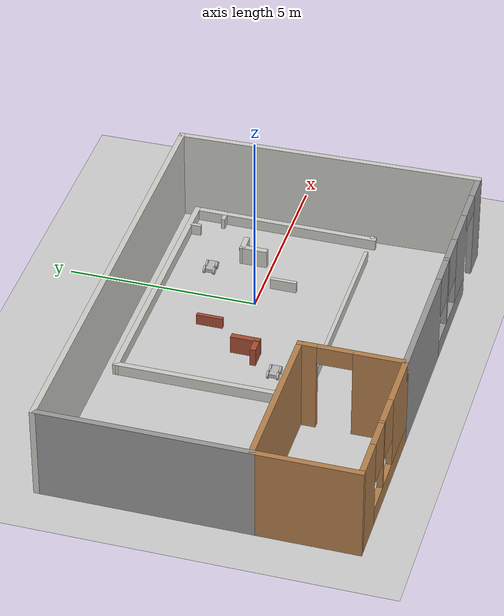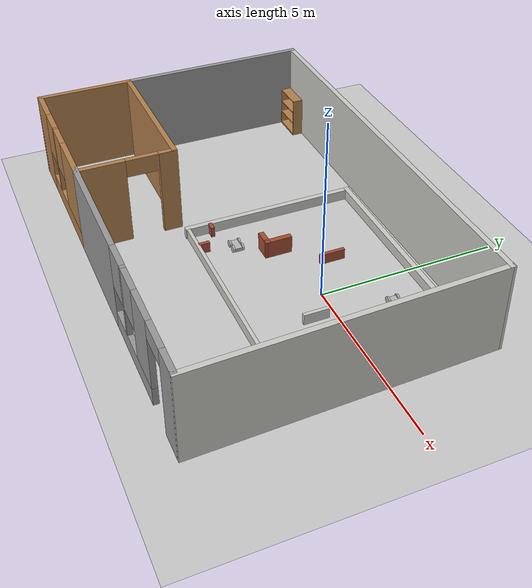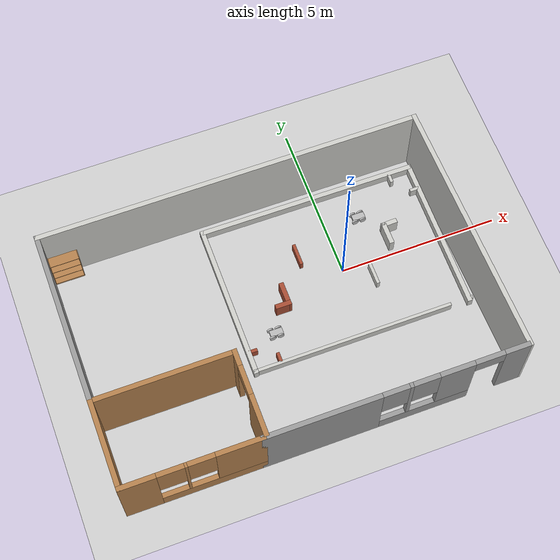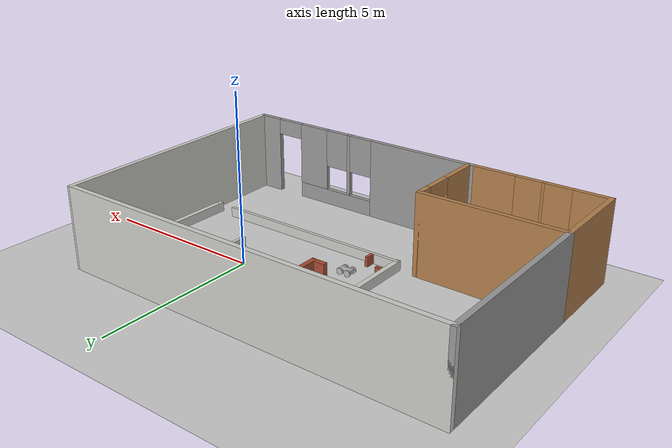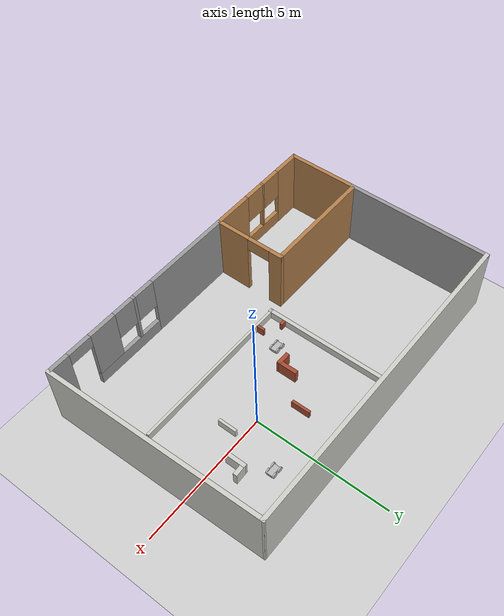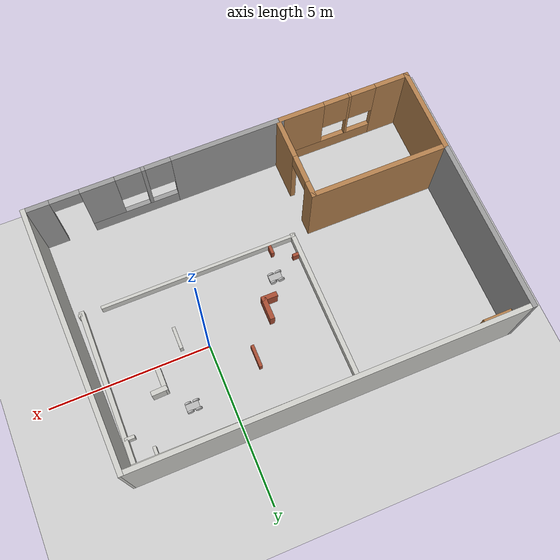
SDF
<sdf version="1.6">
 <world name="default">
  <plugin name="hello" filename="libhello.so"/>
  <light name="sun" type="directional">
   <pose>0 0 10 0 -0 0</pose>
   <diffuse>0.8 0.8 0.8 1</diffuse>
   <specular>0.2 0.2 0.2 1</specular>
   <attenuation>
    <range>1000</range>
    <constant>0.9</constant>
    <linear>0.01</linear>
    <quadratic>0.001</quadratic>
   </attenuation>
   <direction>-0.5 0.1 -0.9</direction>
  </light>
  <model name="ground_plane">
   <static>1</static>
   <link name="link">
    <collision name="collision">
     <geometry><plane><normal>0 0 1</normal><size>100 100</size></plane></geometry>
     <surface><friction><ode><mu>100</mu><mu2>50</mu2></ode></friction></surface>
    </collision>
    <visual name="visual">
     <cast_shadows>0</cast_shadows>
     <geometry><plane><normal>0 0 1</normal><size>100 100</size></plane></geometry>
     <material>
      <script><uri>file://media/materials/scripts/gazebo.material</uri><name>Gazebo/Grey</name></script>
     </material>
    </visual>
   </link>
  </model>
  <gravity>0 0 -9.8</gravity>
  <magnetic_field>6e-06 2.3e-05 -4.2e-05</magnetic_field>
  <atmosphere type="adiabatic"/>
  <physics name="default_physics" default="0" type="ode">
   <max_step_size>0.001</max_step_size>
   <real_time_factor>1</real_time_factor>
   <real_time_update_rate>1000</real_time_update_rate>
  </physics>
  <scene><ambient>0.4 0.4 0.4 1</ambient><background>0.7 0.7 0.7 1</background><shadows>1</shadows></scene>
  <spherical_coordinates>
   <surface_model>EARTH_WGS84</surface_model>
   <latitude_deg>0</latitude_deg>
   <longitude_deg>0</longitude_deg>
   <elevation>0</elevation>
   <heading_deg>0</heading_deg>
  </spherical_coordinates>
  <model name="battleground">
   <pose>-0.211523 0.12377 0 0 -0 0</pose>
   <link name="Wall_0">
    <collision name="Wall_0_Collision">
     <geometry><box><size>7.00909 0.15 0.3</size></box></geometry>
     <pose>0 0 0.15 0 -0 0</pose>
    </collision>
    <visual name="Wall_0_Visual">
     <pose>0 0 0.15 0 -0 0</pose>
     <geometry><box><size>7.00909 0.15 0.3</size></box></geometry>
     <material>
      <script><uri>file://media/materials/scripts/gazebo.material</uri><name>Gazebo/CeilingTiled</name></script>
      <ambient>1 1 1 1</ambient>
     </material>
     <meta><layer>0</layer></meta>
    </visual>
    <pose>-0.007804 2.42504 0 0 0 -0.005249</pose>
   </link>
   <link name="Wall_1">
    <collision name="Wall_1_Collision">
     <geometry><box><size>5.0001 0.15 0.3</size></box></geometry>
     <pose>0 0 0.15 0 -0 0</pose>
    </collision>
    <visual name="Wall_1_Visual">
     <pose>0 0 0.15 0 -0 0</pose>
     <geometry><box><size>5.0001 0.15 0.3</size></box></geometry>
     <material>
      <script><uri>file://media/materials/scripts/gazebo.material</uri><name>Gazebo/CeilingTiled</name></script>
      <ambient>1 1 1 1</ambient>
     </material>
     <meta><layer>0</layer></meta>
    </visual>
    <pose>3.4062 -0.017957 0 0 0 -1.57719</pose>
   </link>
   <link name="Wall_10">
    <pose>0.012696 -2.40696 0 0 -0 0</pose>
    <visual name="Wall_10_Visual_0">
     <pose>-0.354423 0 0.15 0 -0 0</pose>
     <geometry><box><size>6.29115 0.1 0.3</size></box></geometry>
     <material>
      <script><uri>file://media/materials/scripts/gazebo.material</uri><name>Gazebo/CeilingTiled</name></script>
      <ambient>1 1 1 1</ambient>
     </material>
     <meta><layer>0</layer></meta>
    </visual>
    <collision name="Wall_10_Collision_0">
     <geometry><box><size>6.29115 0.1 0.3</size></box></geometry>
     <pose>-0.354423 0 0.15 0 -0 0</pose>
    </collision>
    <visual name="Wall_10_Visual_1">
     <pose>3.44558 0 0.15 0 -0 0</pose>
     <geometry><box><size>0.108846 0.1 0.3</size></box></geometry>
     <material>
      <script><uri>file://media/materials/scripts/gazebo.material</uri><name>Gazebo/CeilingTiled</name></script>
      <ambient>1 1 1 1</ambient>
     </material>
     <meta><layer>0</layer></meta>
    </visual>
    <collision name="Wall_10_Collision_1">
     <geometry><box><size>0.108846 0.1 0.3</size></box></geometry>
     <pose>3.44558 0 0.15 0 -0 0</pose>
    </collision>
   </link>
   <link name="Wall_14">
    <collision name="Wall_14_Collision">
     <geometry><box><size>0.761 0.15 0.5</size></box></geometry>
     <pose>0 0 0.25 0 -0 0</pose>
    </collision>
    <visual name="Wall_14_Visual">
     <pose>0 0 0.25 0 -0 0</pose>
     <geometry><box><size>0.761 0.15 0.5</size></box></geometry>
     <material>
      <script><uri>file://media/materials/scripts/gazebo.material</uri><name>Gazebo/Bricks</name></script>
      <ambient>0.996078 0.47451 0.0196078 1</ambient>
     </material>
     <meta><layer>0</layer></meta>
    </visual>
    <pose>-1.7903 -0.453457 0 0 0 -1.5708</pose>
   </link>
   <link name="Wall_15">
    <collision name="Wall_15_Collision">
     <geometry><box><size>0.5 0.15 0.5</size></box></geometry>
     <pose>0 0 0.25 0 -0 0</pose>
    </collision>
    <visual name="Wall_15_Visual">
     <pose>0 0 0.25 0 -0 0</pose>
     <geometry><box><size>0.5 0.15 0.5</size></box></geometry>
     <material>
      <script><uri>file://media/materials/scripts/gazebo.material</uri><name>Gazebo/Bricks</name></script>
      <ambient>0.996078 0.47451 0.0196078 1</ambient>
     </material>
     <meta><layer>0</layer></meta>
    </visual>
    <pose>-1.9653 -0.759457 0 0 0 -3.13874</pose>
   </link>
   <link name="Wall_17">
    <collision name="Wall_17_Collision">
     <geometry><box><size>0.5 0.15 0.5</size></box></geometry>
     <pose>0 0 0.25 0 -0 0</pose>
    </collision>
    <visual name="Wall_17_Visual">
     <pose>0 0 0.25 0 -0 0</pose>
     <geometry><box><size>0.5 0.15 0.5</size></box></geometry>
     <material>
      <script><uri>file://media/materials/scripts/gazebo.material</uri><name>Gazebo/CeilingTiled</name></script>
      <ambient>0.435294 0.796078 0.67451 1</ambient>
     </material>
     <meta><layer>0</layer></meta>
    </visual>
    <pose>2.0397 0.689543 0 0 0 -3.11017</pose>
   </link>
   <link name="Wall_18">
    <collision name="Wall_18_Collision">
     <geometry><box><size>0.739 0.15 0.5</size></box></geometry>
     <pose>0 0 0.25 0 -0 0</pose>
    </collision>
    <visual name="Wall_18_Visual">
     <pose>0 0 0.25 0 -0 0</pose>
     <geometry><box><size>0.739 0.15 0.5</size></box></geometry>
     <material>
      <script><uri>file://media/materials/scripts/gazebo.material</uri><name>Gazebo/CeilingTiled</name></script>
      <ambient>0.435294 0.796078 0.67451 1</ambient>
     </material>
     <meta><layer>0</layer></meta>
    </visual>
    <pose>1.8647 0.389543 0 0 0 -1.5708</pose>
   </link>
   <link name="Wall_20">
    <collision name="Wall_20_Collision">
     <geometry><box><size>0.25 0.1 0.3</size></box></geometry>
     <pose>0 0 0.15 0 -0 0</pose>
    </collision>
    <visual name="Wall_20_Visual">
     <pose>0 0 0.15 0 -0 0</pose>
     <geometry><box><size>0.25 0.1 0.3</size></box></geometry>
     <material>
      <script><uri>file://media/materials/scripts/gazebo.material</uri><name>Gazebo/Bricks</name></script>
      <ambient>0.996078 0.47451 0.0196078 1</ambient>
     </material>
     <meta><layer>0</layer></meta>
    </visual>
    <pose>-3.2903 -1.77996 0 0 -0 0</pose>
   </link>
   <link name="Wall_22">
    <collision name="Wall_22_Collision">
     <geometry><box><size>0.3 0.1 0.3</size></box></geometry>
     <pose>0 0 0.15 0 -0 0</pose>
    </collision>
    <visual name="Wall_22_Visual">
     <pose>0 0 0.15 0 -0 0</pose>
     <geometry><box><size>0.3 0.1 0.3</size></box></geometry>
     <material>
      <script><uri>file://media/materials/scripts/gazebo.material</uri><name>Gazebo/Bricks</name></script>
      <ambient>0.996078 0.47451 0.0196078 1</ambient>
     </material>
     <meta><layer>0</layer></meta>
    </visual>
    <pose>-2.6333 -2.23096 0 0 -0 1.5708</pose>
   </link>
   <link name="Wall_24">
    <collision name="Wall_24_Collision">
     <geometry><box><size>0.3 0.1 0.3</size></box></geometry>
     <pose>0 0 0.15 0 -0 0</pose>
    </collision>
    <visual name="Wall_24_Visual">
     <pose>0 0 0.15 0 -0 0</pose>
     <geometry><box><size>0.3 0.1 0.3</size></box></geometry>
     <material>
      <script><uri>file://media/materials/scripts/gazebo.material</uri><name>Gazebo/CeilingTiled</name></script>
      <ambient>0.435294 0.796078 0.67451 1</ambient>
     </material>
     <meta><layer>0</layer></meta>
    </visual>
    <pose>2.7217 2.23804 0 0 0 -1.5708</pose>
   </link>
   <link name="Wall_26">
    <collision name="Wall_26_Collision">
     <geometry><box><size>0.3 0.1 0.3</size></box></geometry>
     <pose>0 0 0.15 0 -0 0</pose>
    </collision>
    <visual name="Wall_26_Visual">
     <pose>0 0 0.15 0 -0 0</pose>
     <geometry><box><size>0.3 0.1 0.3</size></box></geometry>
     <material>
      <script><uri>file://media/materials/scripts/gazebo.material</uri><name>Gazebo/CeilingTiled</name></script>
      <ambient>0.435294 0.796078 0.67451 1</ambient>
     </material>
     <meta><layer>0</layer></meta>
    </visual>
    <pose>3.2847 1.60704 0 0 -0 3.14159</pose>
   </link>
   <link name="Wall_28">
    <collision name="Wall_28_Collision">
     <geometry><box><size>0.699918 0.1 0.3</size></box></geometry>
     <pose>0 0 0.15 0 -0 0</pose>
    </collision>
    <visual name="Wall_28_Visual">
     <pose>0 0 0.15 0 -0 0</pose>
     <geometry><box><size>0.699918 0.1 0.3</size></box></geometry>
     <material>
      <script><uri>file://media/materials/scripts/gazebo.material</uri><name>Gazebo/Bricks</name></script>
      <ambient>1 1 1 1</ambient>
     </material>
     <meta><layer>0</layer></meta>
    </visual>
    <pose>-0.946304 0.744043 0 0 0 -1.5708</pose>
   </link>
   <link name="Wall_3">
    <collision name="Wall_3_Collision">
     <geometry><box><size>5 0.15 0.3</size></box></geometry>
     <pose>0 0 0.15 0 -0 0</pose>
    </collision>
    <visual name="Wall_3_Visual">
     <pose>0 0 0.15 0 -0 0</pose>
     <geometry><box><size>5 0.15 0.3</size></box></geometry>
     <material>
      <script><uri>file://media/materials/scripts/gazebo.material</uri><name>Gazebo/CeilingTiled</name></script>
      <ambient>1 1 1 1</ambient>
     </material>
     <meta><layer>0</layer></meta>
    </visual>
    <pose>-3.4373 0.018043 0 0 -0 1.5708</pose>
   </link>
   <link name="Wall_30">
    <collision name="Wall_30_Collision">
     <geometry><box><size>0.700168 0.1 0.3</size></box></geometry>
     <pose>0 0 0.15 0 -0 0</pose>
    </collision>
    <visual name="Wall_30_Visual">
     <pose>0 0 0.15 0 -0 0</pose>
     <geometry><box><size>0.700168 0.1 0.3</size></box></geometry>
     <material>
      <script><uri>file://media/materials/scripts/gazebo.material</uri><name>Gazebo/CeilingTiled</name></script>
      <ambient>0.435294 0.796078 0.67451 1</ambient>
     </material>
     <meta><layer>0</layer></meta>
    </visual>
    <pose>1.0117 -0.661957 0 0 0 -1.5708</pose>
   </link>
   <static>1</static>
  </model>
  <model name="room">
   <pose>-2.43501 -0.99743 0 0 -0 0</pose>
   <link name="Wall_0">
    <collision name="Wall_0_Collision">
     <geometry><box><size>11.97 0.15 2.5</size></box></geometry>
     <pose>0 0 1.25 0 -0 0</pose>
    </collision>
    <visual name="Wall_0_Visual">
     <pose>0 0 1.25 0 -0 0</pose>
     <geometry><box><size>11.97 0.15 2.5</size></box></geometry>
     <material>
      <script><uri>file://media/materials/scripts/gazebo.material</uri><name>Gazebo/CeilingTiled</name></script>
      <ambient>1 1 1 1</ambient>
     </material>
     <meta><layer>0</layer></meta>
    </visual>
    <pose>-0.097397 3.97419 0 0 -0 0</pose>
   </link>
   <link name="Wall_1">
    <collision name="Wall_1_Collision">
     <geometry><box><size>8.1 0.15 2.5</size></box></geometry>
     <pose>0 0 1.25 0 -0 0</pose>
    </collision>
    <visual name="Wall_1_Visual">
     <pose>0 0 1.25 0 -0 0</pose>
     <geometry><box><size>8.1 0.15 2.5</size></box></geometry>
     <material>
      <script><uri>file://media/materials/scripts/gazebo.material</uri><name>Gazebo/CeilingTiled</name></script>
      <ambient>1 1 1 1</ambient>
     </material>
     <meta><layer>0</layer></meta>
    </visual>
    <pose>5.9091 0.000186 0 0 0 -1.54652</pose>
   </link>
   <link name="Wall_21">
    <collision name="Wall_21_Collision">
     <geometry><box><size>5.5 0.15 2.5</size></box></geometry>
     <pose>0 0 1.25 0 -0 0</pose>
    </collision>
    <visual name="Wall_21_Visual">
     <pose>0 0 1.25 0 -0 0</pose>
     <geometry><box><size>5.5 0.15 2.5</size></box></geometry>
     <material>
      <script><uri>file://media/materials/scripts/gazebo.material</uri><name>Gazebo/Grey</name></script>
      <ambient>1 1 1 1</ambient>
     </material>
     <meta><layer>0</layer></meta>
    </visual>
    <pose>-6.0074 1.29919 0 0 0 -1.5708</pose>
   </link>
   <link name="Wall_22">
    <collision name="Wall_22_Collision">
     <geometry><box><size>2.75 0.15 2.5</size></box></geometry>
     <pose>0 0 1.25 0 -0 0</pose>
    </collision>
    <visual name="Wall_22_Visual">
     <pose>0 0 1.25 0 -0 0</pose>
     <geometry><box><size>2.75 0.15 2.5</size></box></geometry>
     <material>
      <script><uri>file://media/materials/scripts/gazebo.material</uri><name>Gazebo/Wood</name></script>
      <ambient>1 1 1 1</ambient>
     </material>
     <meta><layer>0</layer></meta>
    </visual>
    <pose>-6.0074 -2.67581 0 0 0 -1.5708</pose>
   </link>
   <link name="Wall_23">
    <pose>-3.9574 -3.97581 0 0 -0 0</pose>
    <visual name="Wall_23_Visual_0">
     <pose>-1.5675 0 1.25 0 -0 0</pose>
     <geometry><box><size>1.115 0.15 2.5</size></box></geometry>
     <material>
      <script><uri>file://media/materials/scripts/gazebo.material</uri><name>Gazebo/Wood</name></script>
      <ambient>1 1 1 1</ambient>
     </material>
     <meta><layer>0</layer></meta>
    </visual>
    <collision name="Wall_23_Collision_0">
     <geometry><box><size>1.115 0.15 2.5</size></box></geometry>
     <pose>-1.5675 0 1.25 0 -0 0</pose>
    </collision>
    <visual name="Wall_23_Visual_1">
     <pose>0.5575 0 0.25 0 -0 0</pose>
     <geometry><box><size>3.135 0.15 0.5</size></box></geometry>
     <material>
      <script><uri>file://media/materials/scripts/gazebo.material</uri><name>Gazebo/Wood</name></script>
      <ambient>1 1 1 1</ambient>
     </material>
     <meta><layer>0</layer></meta>
    </visual>
    <collision name="Wall_23_Collision_1">
     <geometry><box><size>3.135 0.15 0.5</size></box></geometry>
     <pose>0.5575 0 0.25 0 -0 0</pose>
    </collision>
    <visual name="Wall_23_Visual_2">
     <pose>-0.17 0 1.5 0 -0 0</pose>
     <geometry><box><size>0.079999 0.15 2</size></box></geometry>
     <material>
      <script><uri>file://media/materials/scripts/gazebo.material</uri><name>Gazebo/Wood</name></script>
      <ambient>1 1 1 1</ambient>
     </material>
     <meta><layer>0</layer></meta>
    </visual>
    <collision name="Wall_23_Collision_2">
     <geometry><box><size>0.079999 0.15 2</size></box></geometry>
     <pose>-0.17 0 1.5 0 -0 0</pose>
    </collision>
    <visual name="Wall_23_Visual_3">
     <pose>1.3975 0 1.5 0 -0 0</pose>
     <geometry><box><size>1.455 0.15 2</size></box></geometry>
     <material>
      <script><uri>file://media/materials/scripts/gazebo.material</uri><name>Gazebo/Wood</name></script>
      <ambient>1 1 1 1</ambient>
     </material>
     <meta><layer>0</layer></meta>
    </visual>
    <collision name="Wall_23_Collision_3">
     <geometry><box><size>1.455 0.15 2</size></box></geometry>
     <pose>1.3975 0 1.5 0 -0 0</pose>
    </collision>
    <visual name="Wall_23_Visual_4">
     <pose>-0.61 0 1.9 0 -0 0</pose>
     <geometry><box><size>0.8 0.15 1.2</size></box></geometry>
     <material>
      <script><uri>file://media/materials/scripts/gazebo.material</uri><name>Gazebo/Wood</name></script>
      <ambient>1 1 1 1</ambient>
     </material>
     <meta><layer>0</layer></meta>
    </visual>
    <collision name="Wall_23_Collision_4">
     <geometry><box><size>0.8 0.15 1.2</size></box></geometry>
     <pose>-0.61 0 1.9 0 -0 0</pose>
    </collision>
    <visual name="Wall_23_Visual_5">
     <pose>0.27 0 1.9 0 -0 0</pose>
     <geometry><box><size>0.8 0.15 1.2</size></box></geometry>
     <material>
      <script><uri>file://media/materials/scripts/gazebo.material</uri><name>Gazebo/Wood</name></script>
      <ambient>1 1 1 1</ambient>
     </material>
     <meta><layer>0</layer></meta>
    </visual>
    <collision name="Wall_23_Collision_5">
     <geometry><box><size>0.8 0.15 1.2</size></box></geometry>
     <pose>0.27 0 1.9 0 -0 0</pose>
    </collision>
   </link>
   <link name="Wall_24">
    <pose>2.0176 -3.97581 0 0 -0 0</pose>
    <visual name="Wall_24_Visual_0">
     <pose>-2.2225 0 1.25 0 -0 0</pose>
     <geometry><box><size>3.555 0.15 2.5</size></box></geometry>
     <material>
      <script><uri>file://media/materials/scripts/gazebo.material</uri><name>Gazebo/Grey</name></script>
      <ambient>1 1 1 1</ambient>
     </material>
     <meta><layer>0</layer></meta>
    </visual>
    <collision name="Wall_24_Collision_0">
     <geometry><box><size>3.555 0.15 2.5</size></box></geometry>
     <pose>-2.2225 0 1.25 0 -0 0</pose>
    </collision>
    <visual name="Wall_24_Visual_1">
     <pose>3.6125 0 1.25 0 -0 0</pose>
     <geometry><box><size>0.775 0.15 2.5</size></box></geometry>
     <material>
      <script><uri>file://media/materials/scripts/gazebo.material</uri><name>Gazebo/Grey</name></script>
      <ambient>1 1 1 1</ambient>
     </material>
     <meta><layer>0</layer></meta>
    </visual>
    <collision name="Wall_24_Collision_1">
     <geometry><box><size>0.775 0.15 2.5</size></box></geometry>
     <pose>3.6125 0 1.25 0 -0 0</pose>
    </collision>
    <visual name="Wall_24_Visual_2">
     <pose>0.94 0 0.25 0 -0 0</pose>
     <geometry><box><size>2.77 0.15 0.5</size></box></geometry>
     <material>
      <script><uri>file://media/materials/scripts/gazebo.material</uri><name>Gazebo/Grey</name></script>
      <ambient>1 1 1 1</ambient>
     </material>
     <meta><layer>0</layer></meta>
    </visual>
    <collision name="Wall_24_Collision_2">
     <geometry><box><size>2.77 0.15 0.5</size></box></geometry>
     <pose>0.94 0 0.25 0 -0 0</pose>
    </collision>
    <visual name="Wall_24_Visual_3">
     <pose>0.41 0 1.5 0 -0 0</pose>
     <geometry><box><size>0.11 0.15 2</size></box></geometry>
     <material>
      <script><uri>file://media/materials/scripts/gazebo.material</uri><name>Gazebo/Grey</name></script>
      <ambient>1 1 1 1</ambient>
     </material>
     <meta><layer>0</layer></meta>
    </visual>
    <collision name="Wall_24_Collision_3">
     <geometry><box><size>0.11 0.15 2</size></box></geometry>
     <pose>0.41 0 1.5 0 -0 0</pose>
    </collision>
    <visual name="Wall_24_Visual_4">
     <pose>1.795 0 1.5 0 -0 0</pose>
     <geometry><box><size>1.06 0.15 2</size></box></geometry>
     <material>
      <script><uri>file://media/materials/scripts/gazebo.material</uri><name>Gazebo/Grey</name></script>
      <ambient>1 1 1 1</ambient>
     </material>
     <meta><layer>0</layer></meta>
    </visual>
    <collision name="Wall_24_Collision_4">
     <geometry><box><size>1.06 0.15 2</size></box></geometry>
     <pose>1.795 0 1.5 0 -0 0</pose>
    </collision>
    <visual name="Wall_24_Visual_5">
     <pose>-0.045 0 1.9 0 -0 0</pose>
     <geometry><box><size>0.8 0.15 1.2</size></box></geometry>
     <material>
      <script><uri>file://media/materials/scripts/gazebo.material</uri><name>Gazebo/Grey</name></script>
      <ambient>1 1 1 1</ambient>
     </material>
     <meta><layer>0</layer></meta>
    </visual>
    <collision name="Wall_24_Collision_5">
     <geometry><box><size>0.8 0.15 1.2</size></box></geometry>
     <pose>-0.045 0 1.9 0 -0 0</pose>
    </collision>
    <visual name="Wall_24_Visual_6">
     <pose>0.865 0 1.9 0 -0 0</pose>
     <geometry><box><size>0.8 0.15 1.2</size></box></geometry>
     <material>
      <script><uri>file://media/materials/scripts/gazebo.material</uri><name>Gazebo/Grey</name></script>
      <ambient>1 1 1 1</ambient>
     </material>
     <meta><layer>0</layer></meta>
    </visual>
    <collision name="Wall_24_Collision_6">
     <geometry><box><size>0.8 0.15 1.2</size></box></geometry>
     <pose>0.865 0 1.9 0 -0 0</pose>
    </collision>
    <visual name="Wall_24_Visual_7">
     <pose>2.775 0 2.25 0 -0 0</pose>
     <geometry><box><size>0.9 0.15 0.5</size></box></geometry>
     <material>
      <script><uri>file://media/materials/scripts/gazebo.material</uri><name>Gazebo/Grey</name></script>
      <ambient>1 1 1 1</ambient>
     </material>
     <meta><layer>0</layer></meta>
    </visual>
    <collision name="Wall_24_Collision_7">
     <geometry><box><size>0.9 0.15 0.5</size></box></geometry>
     <pose>2.775 0 2.25 0 -0 0</pose>
    </collision>
   </link>
   <link name="Wall_5">
    <collision name="Wall_5_Collision">
     <geometry><box><size>4.25 0.15 2.5</size></box></geometry>
     <pose>0 0 1.25 0 -0 0</pose>
    </collision>
    <visual name="Wall_5_Visual">
     <pose>0 0 1.25 0 -0 0</pose>
     <geometry><box><size>4.25 0.15 2.5</size></box></geometry>
     <material>
      <script><uri>file://media/materials/scripts/gazebo.material</uri><name>Gazebo/Wood</name></script>
      <ambient>1 1 1 1</ambient>
     </material>
     <meta><layer>0</layer></meta>
    </visual>
    <pose>-3.8574 -1.34581 0 0 -0 0</pose>
   </link>
   <link name="Wall_6">
    <pose>-1.8074 -2.62081 0 0 0 -1.5708</pose>
    <visual name="Wall_6_Visual_0">
     <pose>-1.0925 0 1.25 0 -0 0</pose>
     <geometry><box><size>0.515 0.15 2.5</size></box></geometry>
     <material>
      <script><uri>file://media/materials/scripts/gazebo.material</uri><name>Gazebo/Wood</name></script>
      <ambient>1 1 1 1</ambient>
     </material>
     <meta><layer>0</layer></meta>
    </visual>
    <collision name="Wall_6_Collision_0">
     <geometry><box><size>0.515 0.15 2.5</size></box></geometry>
     <pose>-1.0925 0 1.25 0 -0 0</pose>
    </collision>
    <visual name="Wall_6_Visual_1">
     <pose>0.7075 0 1.25 0 -0 0</pose>
     <geometry><box><size>1.285 0.15 2.5</size></box></geometry>
     <material>
      <script><uri>file://media/materials/scripts/gazebo.material</uri><name>Gazebo/Wood</name></script>
      <ambient>1 1 1 1</ambient>
     </material>
     <meta><layer>0</layer></meta>
    </visual>
    <collision name="Wall_6_Collision_1">
     <geometry><box><size>1.285 0.15 2.5</size></box></geometry>
     <pose>0.7075 0 1.25 0 -0 0</pose>
    </collision>
    <visual name="Wall_6_Visual_2">
     <pose>-0.385 0 2.25 0 -0 0</pose>
     <geometry><box><size>0.9 0.15 0.5</size></box></geometry>
     <material>
      <script><uri>file://media/materials/scripts/gazebo.material</uri><name>Gazebo/Wood</name></script>
      <ambient>1 1 1 1</ambient>
     </material>
     <meta><layer>0</layer></meta>
    </visual>
    <collision name="Wall_6_Collision_2">
     <geometry><box><size>0.9 0.15 0.5</size></box></geometry>
     <pose>-0.385 0 2.25 0 -0 0</pose>
    </collision>
   </link>
   <static>1</static>
  </model>
  <model name="bookshelf">
   <static>1</static>
   <link name="link">
    <inertial><mass>1</mass></inertial>
    <collision name="back">
     <pose>0 0.005 0.6 0 -0 0</pose>
     <geometry><box><size>0.9 0.01 1.2</size></box></geometry>
    </collision>
    <visual name="visual1">
     <pose>0 0.005 0.6 0 -0 0</pose>
     <geometry><box><size>0.9 0.01 1.2</size></box></geometry>
     <material>
      <script><uri>file://media/materials/scripts/gazebo.material</uri><name>Gazebo/Wood</name></script>
     </material>
    </visual>
    <collision name="left_side">
     <pose>0.45 -0.195 0.6 0 -0 0</pose>
     <geometry><box><size>0.02 0.4 1.2</size></box></geometry>
    </collision>
    <visual name="visual2">
     <pose>0.45 -0.195 0.6 0 -0 0</pose>
     <geometry><box><size>0.02 0.4 1.2</size></box></geometry>
     <material>
      <script><uri>file://media/materials/scripts/gazebo.material</uri><name>Gazebo/Wood</name></script>
     </material>
    </visual>
    <collision name="right_side">
     <pose>-0.45 -0.195 0.6 0 -0 0</pose>
     <geometry><box><size>0.02 0.4 1.2</size></box></geometry>
    </collision>
    <visual name="visual3">
     <pose>-0.45 -0.195 0.6 0 -0 0</pose>
     <geometry><box><size>0.02 0.4 1.2</size></box></geometry>
     <material>
      <script><uri>file://media/materials/scripts/gazebo.material</uri><name>Gazebo/Wood</name></script>
     </material>
    </visual>
    <collision name="bottom">
     <pose>0 -0.195 0.03 0 -0 0</pose>
     <geometry><box><size>0.88 0.4 0.06</size></box></geometry>
    </collision>
    <visual name="visual4">
     <pose>0 -0.195 0.03 0 -0 0</pose>
     <geometry><box><size>0.88 0.4 0.06</size></box></geometry>
     <material>
      <script><uri>file://media/materials/scripts/gazebo.material</uri><name>Gazebo/Wood</name></script>
     </material>
    </visual>
    <collision name="top">
     <pose>0 -0.195 1.19 0 -0 0</pose>
     <geometry><box><size>0.88 0.4 0.02</size></box></geometry>
    </collision>
    <visual name="visual5">
     <pose>0 -0.195 1.19 0 -0 0</pose>
     <geometry><box><size>0.88 0.4 0.02</size></box></geometry>
     <material>
      <script><uri>file://media/materials/scripts/gazebo.material</uri><name>Gazebo/Wood</name></script>
     </material>
    </visual>
    <collision name="low_shelf">
     <pose>0 -0.195 0.43 0 -0 0</pose>
     <geometry><box><size>0.88 0.4 0.02</size></box></geometry>
    </collision>
    <visual name="visual6">
     <pose>0 -0.195 0.43 0 -0 0</pose>
     <geometry><box><size>0.88 0.4 0.02</size></box></geometry>
     <material>
      <script><uri>file://media/materials/scripts/gazebo.material</uri><name>Gazebo/Wood</name></script>
     </material>
    </visual>
    <collision name="high_shelf">
     <pose>0 -0.195 0.8 0 -0 0</pose>
     <geometry><box><size>0.88 0.4 0.02</size></box></geometry>
    </collision>
    <visual name="visual7">
     <pose>0 -0.195 0.8 0 -0 0</pose>
     <geometry><box><size>0.88 0.4 0.02</size></box></geometry>
     <material>
      <script><uri>file://media/materials/scripts/gazebo.material</uri><name>Gazebo/Wood</name></script>
     </material>
    </visual>
   </link>
   <pose>-7.91566 2.98462 0 0 -0 0</pose>
  </model>
  <model name="my_robot">
   <static>1</static>
   <link name="chassis">
    <pose>-0 0 0.1 0 -0 0</pose>
    <inertial>
     <inertia><ixx>1</ixx><ixy>0</ixy><ixz>0</ixz><iyy>1</iyy><iyz>0</iyz><izz>1</izz></inertia>
     <mass>1</mass>
    </inertial>
    <visual name="visual">
     <geometry><box><size>0.4 0.2 0.1</size></box></geometry>
     <material><shader type="pixel"/></material>
    </visual>
    <collision name="collision">
     <geometry><box><size>0.4 0.2 0.1</size></box></geometry>
     <surface>
      <friction>
       <ode><mu>1</mu><mu2>1</mu2><fdir1>0 0 0</fdir1><slip1>0</slip1><slip2>0</slip2></ode>
       <torsional>
        <coefficient>1</coefficient>
        <patch_radius>0</patch_radius>
        <surface_radius>0</surface_radius>
        <use_patch_radius>1</use_patch_radius>
        <ode><slip>0</slip></ode>
       </torsional>
      </friction>
      <bounce><restitution_coefficient>0</restitution_coefficient><threshold>1e+06</threshold></bounce>
      <contact>
       <collide_without_contact>0</collide_without_contact>
       <collide_without_contact_bitmask>1</collide_without_contact_bitmask>
       <collide_bitmask>1</collide_bitmask>
       <ode>
        <soft_cfm>0</soft_cfm>
        <soft_erp>0.2</soft_erp>
        <kp>1e+13</kp>
        <kd>1</kd>
        <max_vel>0.01</max_vel>
        <min_depth>0</min_depth>
       </ode>
       <bullet>
        <split_impulse>1</split_impulse>
        <split_impulse_penetration_threshold>-0.01</split_impulse_penetration_threshold>
        <soft_cfm>0</soft_cfm>
        <soft_erp>0.2</soft_erp>
        <kp>1e+13</kp>
        <kd>1</kd>
       </bullet>
      </contact>
     </surface>
    </collision>
   </link>
   <link name="left_wheel">
    <pose>0.1 0.13 0.1 -0.000563 1.5707 1.57014</pose>
    <inertial>
     <inertia><ixx>1</ixx><ixy>0</ixy><ixz>0</ixz><iyy>1</iyy><iyz>0</iyz><izz>1</izz></inertia>
     <mass>1</mass>
    </inertial>
    <visual name="visual">
     <geometry><cylinder><radius>0.1</radius><length>0.05</length></cylinder></geometry>
     <material><shader type="pixel"/></material>
    </visual>
    <collision name="collision">
     <geometry><cylinder><radius>0.1</radius><length>0.05</length></cylinder></geometry>
     <surface>
      <friction>
       <ode><mu>1</mu><mu2>1</mu2><fdir1>0 0 0</fdir1><slip1>0</slip1><slip2>0</slip2></ode>
       <torsional>
        <coefficient>1</coefficient>
        <patch_radius>0</patch_radius>
        <surface_radius>0</surface_radius>
        <use_patch_radius>1</use_patch_radius>
        <ode><slip>0</slip></ode>
       </torsional>
      </friction>
      <bounce><restitution_coefficient>0</restitution_coefficient><threshold>1e+06</threshold></bounce>
      <contact>
       <collide_without_contact>0</collide_without_contact>
       <collide_without_contact_bitmask>1</collide_without_contact_bitmask>
       <collide_bitmask>1</collide_bitmask>
       <ode>
        <soft_cfm>0</soft_cfm>
        <soft_erp>0.2</soft_erp>
        <kp>1e+13</kp>
        <kd>1</kd>
        <max_vel>0.01</max_vel>
        <min_depth>0</min_depth>
       </ode>
       <bullet>
        <split_impulse>1</split_impulse>
        <split_impulse_penetration_threshold>-0.01</split_impulse_penetration_threshold>
        <soft_cfm>0</soft_cfm>
        <soft_erp>0.2</soft_erp>
        <kp>1e+13</kp>
        <kd>1</kd>
       </bullet>
      </contact>
     </surface>
    </collision>
   </link>
   <link name="right_wheel">
    <pose>0.1 -0.13 0.1 -0.001801 1.5707 1.5689</pose>
    <inertial>
     <inertia><ixx>1</ixx><ixy>0</ixy><ixz>0</ixz><iyy>1</iyy><iyz>0</iyz><izz>1</izz></inertia>
     <mass>1</mass>
    </inertial>
    <visual name="visual">
     <geometry><cylinder><radius>0.1</radius><length>0.05</length></cylinder></geometry>
     <material><shader type="pixel"><normal_map>__default__</normal_map></shader></material>
    </visual>
    <collision name="collision">
     <geometry><cylinder><radius>0.1</radius><length>0.05</length></cylinder></geometry>
     <surface>
      <friction>
       <ode><mu>1</mu><mu2>1</mu2><fdir1>0 0 0</fdir1><slip1>0</slip1><slip2>0</slip2></ode>
       <torsional>
        <coefficient>1</coefficient>
        <patch_radius>0</patch_radius>
        <surface_radius>0</surface_radius>
        <use_patch_radius>1</use_patch_radius>
        <ode><slip>0</slip></ode>
       </torsional>
      </friction>
      <bounce><restitution_coefficient>0</restitution_coefficient><threshold>1e+06</threshold></bounce>
      <contact>
       <collide_without_contact>0</collide_without_contact>
       <collide_without_contact_bitmask>1</collide_without_contact_bitmask>
       <collide_bitmask>1</collide_bitmask>
       <ode>
        <soft_cfm>0</soft_cfm>
        <soft_erp>0.2</soft_erp>
        <kp>1e+13</kp>
        <kd>1</kd>
        <max_vel>0.01</max_vel>
        <min_depth>0</min_depth>
       </ode>
       <bullet>
        <split_impulse>1</split_impulse>
        <split_impulse_penetration_threshold>-0.01</split_impulse_penetration_threshold>
        <soft_cfm>0</soft_cfm>
        <soft_erp>0.2</soft_erp>
        <kp>1e+13</kp>
        <kd>1</kd>
       </bullet>
      </contact>
     </surface>
    </collision>
   </link>
   <joint name="left_wheel_hinge" type="revolute">
    <parent>chassis</parent>
    <child>left_wheel</child>
    <pose>0 0 -0.03 0 -0 0</pose>
    <axis>
     <xyz>0 1 0</xyz>
     <use_parent_model_frame>1</use_parent_model_frame>
     <limit><lower>-1e+16</lower><upper>1e+16</upper><effort>-1</effort><velocity>-1</velocity></limit>
     <dynamics>
      <spring_reference>0</spring_reference>
      <spring_stiffness>0</spring_stiffness>
      <damping>0</damping>
      <friction>0</friction>
     </dynamics>
    </axis>
    <physics>
     <ode><limit><cfm>0</cfm><erp>0.2</erp></limit><suspension><cfm>0</cfm><erp>0.2</erp></suspension></ode>
    </physics>
   </joint>
   <joint name="right_wheel_hinge" type="revolute">
    <parent>chassis</parent>
    <child>right_wheel</child>
    <pose>0 0 0.03 0 -0 0</pose>
    <axis>
     <xyz>0 1 0</xyz>
     <use_parent_model_frame>1</use_parent_model_frame>
     <limit><lower>-1e+16</lower><upper>1e+16</upper><effort>-1</effort><velocity>-1</velocity></limit>
     <dynamics>
      <spring_reference>0</spring_reference>
      <spring_stiffness>0</spring_stiffness>
      <damping>0</damping>
      <friction>0</friction>
     </dynamics>
    </axis>
    <physics>
     <ode><limit><cfm>0</cfm><erp>0.2</erp></limit><suspension><cfm>0</cfm><erp>0.2</erp></suspension></ode>
    </physics>
   </joint>
   <link name="back_left_wheel">
    <pose>-0.15 -0.13 0.1 -0.001801 1.5707 1.5689</pose>
    <inertial>
     <inertia><ixx>1</ixx><ixy>0</ixy><ixz>0</ixz><iyy>1</iyy><iyz>0</iyz><izz>1</izz></inertia>
     <mass>1</mass>
    </inertial>
    <visual name="visual">
     <geometry><cylinder><radius>0.1</radius><length>0.05</length></cylinder></geometry>
     <material><shader type="pixel"/></material>
    </visual>
    <collision name="collision">
     <geometry><cylinder><radius>0.1</radius><length>0.05</length></cylinder></geometry>
     <surface>
      <friction>
       <ode><mu>1</mu><mu2>1</mu2><fdir1>0 0 0</fdir1><slip1>0</slip1><slip2>0</slip2></ode>
       <torsional>
        <coefficient>1</coefficient>
        <patch_radius>0</patch_radius>
        <surface_radius>0</surface_radius>
        <use_patch_radius>1</use_patch_radius>
        <ode><slip>0</slip></ode>
       </torsional>
      </friction>
      <bounce><restitution_coefficient>0</restitution_coefficient><threshold>1e+06</threshold></bounce>
      <contact>
       <collide_without_contact>0</collide_without_contact>
       <collide_without_contact_bitmask>1</collide_without_contact_bitmask>
       <collide_bitmask>1</collide_bitmask>
       <ode>
        <soft_cfm>0</soft_cfm>
        <soft_erp>0.2</soft_erp>
        <kp>1e+13</kp>
        <kd>1</kd>
        <max_vel>0.01</max_vel>
        <min_depth>0</min_depth>
       </ode>
       <bullet>
        <split_impulse>1</split_impulse>
        <split_impulse_penetration_threshold>-0.01</split_impulse_penetration_threshold>
        <soft_cfm>0</soft_cfm>
        <soft_erp>0.2</soft_erp>
        <kp>1e+13</kp>
        <kd>1</kd>
       </bullet>
      </contact>
     </surface>
    </collision>
   </link>
   <link name="back_right_wheel">
    <pose>-0.15 0.13 0.1 -0.001801 1.5707 1.5689</pose>
    <inertial>
     <inertia><ixx>1</ixx><ixy>0</ixy><ixz>0</ixz><iyy>1</iyy><iyz>0</iyz><izz>1</izz></inertia>
     <mass>1</mass>
    </inertial>
    <visual name="visual">
     <geometry><cylinder><radius>0.1</radius><length>0.05</length></cylinder></geometry>
     <material><shader type="pixel"><normal_map>__default__</normal_map></shader></material>
    </visual>
    <collision name="collision">
     <geometry><cylinder><radius>0.1</radius><length>0.05</length></cylinder></geometry>
     <surface>
      <friction>
       <ode><mu>1</mu><mu2>1</mu2><fdir1>0 0 0</fdir1><slip1>0</slip1><slip2>0</slip2></ode>
       <torsional>
        <coefficient>1</coefficient>
        <patch_radius>0</patch_radius>
        <surface_radius>0</surface_radius>
        <use_patch_radius>1</use_patch_radius>
        <ode><slip>0</slip></ode>
       </torsional>
      </friction>
      <bounce><restitution_coefficient>0</restitution_coefficient><threshold>1e+06</threshold></bounce>
      <contact>
       <collide_without_contact>0</collide_without_contact>
       <collide_without_contact_bitmask>1</collide_without_contact_bitmask>
       <collide_bitmask>1</collide_bitmask>
       <ode>
        <soft_cfm>0</soft_cfm>
        <soft_erp>0.2</soft_erp>
        <kp>1e+13</kp>
        <kd>1</kd>
        <max_vel>0.01</max_vel>
        <min_depth>0</min_depth>
       </ode>
       <bullet>
        <split_impulse>1</split_impulse>
        <split_impulse_penetration_threshold>-0.01</split_impulse_penetration_threshold>
        <soft_cfm>0</soft_cfm>
        <soft_erp>0.2</soft_erp>
        <kp>1e+13</kp>
        <kd>1</kd>
       </bullet>
      </contact>
     </surface>
    </collision>
   </link>
   <joint name="back_left_wheel_hinge" type="revolute">
    <parent>chassis</parent>
    <child>left_wheel</child>
    <pose>-0.15 0 -0.03 0 -0 0</pose>
    <axis>
     <xyz>0 1 0</xyz>
     <use_parent_model_frame>1</use_parent_model_frame>
     <limit><lower>-1e+16</lower><upper>1e+16</upper><effort>-1</effort><velocity>-1</velocity></limit>
     <dynamics>
      <spring_reference>0</spring_reference>
      <spring_stiffness>0</spring_stiffness>
      <damping>0</damping>
      <friction>0</friction>
     </dynamics>
    </axis>
    <physics>
     <ode><limit><cfm>0</cfm><erp>0.2</erp></limit><suspension><cfm>0</cfm><erp>0.2</erp></suspension></ode>
    </physics>
   </joint>
   <joint name="back_right_wheel_hinge" type="revolute">
    <parent>chassis</parent>
    <child>right_wheel</child>
    <pose>-0.15 0 0.03 0 -0 0</pose>
    <axis>
     <xyz>0 1 0</xyz>
     <use_parent_model_frame>1</use_parent_model_frame>
     <limit><lower>-1e+16</lower><upper>1e+16</upper><effort>-1</effort><velocity>-1</velocity></limit>
     <dynamics>
      <spring_reference>0</spring_reference>
      <spring_stiffness>0</spring_stiffness>
      <damping>0</damping>
      <friction>0</friction>
     </dynamics>
    </axis>
    <physics>
     <ode><limit><cfm>0</cfm><erp>0.2</erp></limit><suspension><cfm>0</cfm><erp>0.2</erp></suspension></ode>
    </physics>
   </joint>
   <static>0</static>
   <pose>-2.63481 -1.26882 0 0 -0 0</pose>
  </model>
  <model name="my_robot_0">
   <static>1</static>
   <link name="chassis">
    <pose>-0 0 0.1 0 -0 0</pose>
    <inertial>
     <inertia><ixx>1</ixx><ixy>0</ixy><ixz>0</ixz><iyy>1</iyy><iyz>0</iyz><izz>1</izz></inertia>
     <mass>1</mass>
    </inertial>
    <visual name="visual">
     <geometry><box><size>0.4 0.2 0.1</size></box></geometry>
     <material><shader type="pixel"/></material>
    </visual>
    <collision name="collision">
     <geometry><box><size>0.4 0.2 0.1</size></box></geometry>
     <surface>
      <friction>
       <ode><mu>1</mu><mu2>1</mu2><fdir1>0 0 0</fdir1><slip1>0</slip1><slip2>0</slip2></ode>
       <torsional>
        <coefficient>1</coefficient>
        <patch_radius>0</patch_radius>
        <surface_radius>0</surface_radius>
        <use_patch_radius>1</use_patch_radius>
        <ode><slip>0</slip></ode>
       </torsional>
      </friction>
      <bounce><restitution_coefficient>0</restitution_coefficient><threshold>1e+06</threshold></bounce>
      <contact>
       <collide_without_contact>0</collide_without_contact>
       <collide_without_contact_bitmask>1</collide_without_contact_bitmask>
       <collide_bitmask>1</collide_bitmask>
       <ode>
        <soft_cfm>0</soft_cfm>
        <soft_erp>0.2</soft_erp>
        <kp>1e+13</kp>
        <kd>1</kd>
        <max_vel>0.01</max_vel>
        <min_depth>0</min_depth>
       </ode>
       <bullet>
        <split_impulse>1</split_impulse>
        <split_impulse_penetration_threshold>-0.01</split_impulse_penetration_threshold>
        <soft_cfm>0</soft_cfm>
        <soft_erp>0.2</soft_erp>
        <kp>1e+13</kp>
        <kd>1</kd>
       </bullet>
      </contact>
     </surface>
    </collision>
   </link>
   <link name="left_wheel">
    <pose>0.1 0.13 0.1 -0.000563 1.5707 1.57014</pose>
    <inertial>
     <inertia><ixx>1</ixx><ixy>0</ixy><ixz>0</ixz><iyy>1</iyy><iyz>0</iyz><izz>1</izz></inertia>
     <mass>1</mass>
    </inertial>
    <visual name="visual">
     <geometry><cylinder><radius>0.1</radius><length>0.05</length></cylinder></geometry>
     <material><shader type="pixel"/></material>
    </visual>
    <collision name="collision">
     <geometry><cylinder><radius>0.1</radius><length>0.05</length></cylinder></geometry>
     <surface>
      <friction>
       <ode><mu>1</mu><mu2>1</mu2><fdir1>0 0 0</fdir1><slip1>0</slip1><slip2>0</slip2></ode>
       <torsional>
        <coefficient>1</coefficient>
        <patch_radius>0</patch_radius>
        <surface_radius>0</surface_radius>
        <use_patch_radius>1</use_patch_radius>
        <ode><slip>0</slip></ode>
       </torsional>
      </friction>
      <bounce><restitution_coefficient>0</restitution_coefficient><threshold>1e+06</threshold></bounce>
      <contact>
       <collide_without_contact>0</collide_without_contact>
       <collide_without_contact_bitmask>1</collide_without_contact_bitmask>
       <collide_bitmask>1</collide_bitmask>
       <ode>
        <soft_cfm>0</soft_cfm>
        <soft_erp>0.2</soft_erp>
        <kp>1e+13</kp>
        <kd>1</kd>
        <max_vel>0.01</max_vel>
        <min_depth>0</min_depth>
       </ode>
       <bullet>
        <split_impulse>1</split_impulse>
        <split_impulse_penetration_threshold>-0.01</split_impulse_penetration_threshold>
        <soft_cfm>0</soft_cfm>
        <soft_erp>0.2</soft_erp>
        <kp>1e+13</kp>
        <kd>1</kd>
       </bullet>
      </contact>
     </surface>
    </collision>
   </link>
   <link name="right_wheel">
    <pose>0.1 -0.13 0.1 -0.001801 1.5707 1.5689</pose>
    <inertial>
     <inertia><ixx>1</ixx><ixy>0</ixy><ixz>0</ixz><iyy>1</iyy><iyz>0</iyz><izz>1</izz></inertia>
     <mass>1</mass>
    </inertial>
    <visual name="visual">
     <geometry><cylinder><radius>0.1</radius><length>0.05</length></cylinder></geometry>
     <material><shader type="pixel"><normal_map>__default__</normal_map></shader></material>
    </visual>
    <collision name="collision">
     <geometry><cylinder><radius>0.1</radius><length>0.05</length></cylinder></geometry>
     <surface>
      <friction>
       <ode><mu>1</mu><mu2>1</mu2><fdir1>0 0 0</fdir1><slip1>0</slip1><slip2>0</slip2></ode>
       <torsional>
        <coefficient>1</coefficient>
        <patch_radius>0</patch_radius>
        <surface_radius>0</surface_radius>
        <use_patch_radius>1</use_patch_radius>
        <ode><slip>0</slip></ode>
       </torsional>
      </friction>
      <bounce><restitution_coefficient>0</restitution_coefficient><threshold>1e+06</threshold></bounce>
      <contact>
       <collide_without_contact>0</collide_without_contact>
       <collide_without_contact_bitmask>1</collide_without_contact_bitmask>
       <collide_bitmask>1</collide_bitmask>
       <ode>
        <soft_cfm>0</soft_cfm>
        <soft_erp>0.2</soft_erp>
        <kp>1e+13</kp>
        <kd>1</kd>
        <max_vel>0.01</max_vel>
        <min_depth>0</min_depth>
       </ode>
       <bullet>
        <split_impulse>1</split_impulse>
        <split_impulse_penetration_threshold>-0.01</split_impulse_penetration_threshold>
        <soft_cfm>0</soft_cfm>
        <soft_erp>0.2</soft_erp>
        <kp>1e+13</kp>
        <kd>1</kd>
       </bullet>
      </contact>
     </surface>
    </collision>
   </link>
   <joint name="left_wheel_hinge" type="revolute">
    <parent>chassis</parent>
    <child>left_wheel</child>
    <pose>0 0 -0.03 0 -0 0</pose>
    <axis>
     <xyz>0 1 0</xyz>
     <use_parent_model_frame>1</use_parent_model_frame>
     <limit><lower>-1e+16</lower><upper>1e+16</upper><effort>-1</effort><velocity>-1</velocity></limit>
     <dynamics>
      <spring_reference>0</spring_reference>
      <spring_stiffness>0</spring_stiffness>
      <damping>0</damping>
      <friction>0</friction>
     </dynamics>
    </axis>
    <physics>
     <ode><limit><cfm>0</cfm><erp>0.2</erp></limit><suspension><cfm>0</cfm><erp>0.2</erp></suspension></ode>
    </physics>
   </joint>
   <joint name="right_wheel_hinge" type="revolute">
    <parent>chassis</parent>
    <child>right_wheel</child>
    <pose>0 0 0.03 0 -0 0</pose>
    <axis>
     <xyz>0 1 0</xyz>
     <use_parent_model_frame>1</use_parent_model_frame>
     <limit><lower>-1e+16</lower><upper>1e+16</upper><effort>-1</effort><velocity>-1</velocity></limit>
     <dynamics>
      <spring_reference>0</spring_reference>
      <spring_stiffness>0</spring_stiffness>
      <damping>0</damping>
      <friction>0</friction>
     </dynamics>
    </axis>
    <physics>
     <ode><limit><cfm>0</cfm><erp>0.2</erp></limit><suspension><cfm>0</cfm><erp>0.2</erp></suspension></ode>
    </physics>
   </joint>
   <link name="back_left_wheel">
    <pose>-0.15 -0.13 0.1 -0.001801 1.5707 1.5689</pose>
    <inertial>
     <inertia><ixx>1</ixx><ixy>0</ixy><ixz>0</ixz><iyy>1</iyy><iyz>0</iyz><izz>1</izz></inertia>
     <mass>1</mass>
    </inertial>
    <visual name="visual">
     <geometry><cylinder><radius>0.1</radius><length>0.05</length></cylinder></geometry>
     <material><shader type="pixel"/></material>
    </visual>
    <collision name="collision">
     <geometry><cylinder><radius>0.1</radius><length>0.05</length></cylinder></geometry>
     <surface>
      <friction>
       <ode><mu>1</mu><mu2>1</mu2><fdir1>0 0 0</fdir1><slip1>0</slip1><slip2>0</slip2></ode>
       <torsional>
        <coefficient>1</coefficient>
        <patch_radius>0</patch_radius>
        <surface_radius>0</surface_radius>
        <use_patch_radius>1</use_patch_radius>
        <ode><slip>0</slip></ode>
       </torsional>
      </friction>
      <bounce><restitution_coefficient>0</restitution_coefficient><threshold>1e+06</threshold></bounce>
      <contact>
       <collide_without_contact>0</collide_without_contact>
       <collide_without_contact_bitmask>1</collide_without_contact_bitmask>
       <collide_bitmask>1</collide_bitmask>
       <ode>
        <soft_cfm>0</soft_cfm>
        <soft_erp>0.2</soft_erp>
        <kp>1e+13</kp>
        <kd>1</kd>
        <max_vel>0.01</max_vel>
        <min_depth>0</min_depth>
       </ode>
       <bullet>
        <split_impulse>1</split_impulse>
        <split_impulse_penetration_threshold>-0.01</split_impulse_penetration_threshold>
        <soft_cfm>0</soft_cfm>
        <soft_erp>0.2</soft_erp>
        <kp>1e+13</kp>
        <kd>1</kd>
       </bullet>
      </contact>
     </surface>
    </collision>
   </link>
   <link name="back_right_wheel">
    <pose>-0.15 0.13 0.1 -0.001801 1.5707 1.5689</pose>
    <inertial>
     <inertia><ixx>1</ixx><ixy>0</ixy><ixz>0</ixz><iyy>1</iyy><iyz>0</iyz><izz>1</izz></inertia>
     <mass>1</mass>
    </inertial>
    <visual name="visual">
     <geometry><cylinder><radius>0.1</radius><length>0.05</length></cylinder></geometry>
     <material><shader type="pixel"><normal_map>__default__</normal_map></shader></material>
    </visual>
    <collision name="collision">
     <geometry><cylinder><radius>0.1</radius><length>0.05</length></cylinder></geometry>
     <surface>
      <friction>
       <ode><mu>1</mu><mu2>1</mu2><fdir1>0 0 0</fdir1><slip1>0</slip1><slip2>0</slip2></ode>
       <torsional>
        <coefficient>1</coefficient>
        <patch_radius>0</patch_radius>
        <surface_radius>0</surface_radius>
        <use_patch_radius>1</use_patch_radius>
        <ode><slip>0</slip></ode>
       </torsional>
      </friction>
      <bounce><restitution_coefficient>0</restitution_coefficient><threshold>1e+06</threshold></bounce>
      <contact>
       <collide_without_contact>0</collide_without_contact>
       <collide_without_contact_bitmask>1</collide_without_contact_bitmask>
       <collide_bitmask>1</collide_bitmask>
       <ode>
        <soft_cfm>0</soft_cfm>
        <soft_erp>0.2</soft_erp>
        <kp>1e+13</kp>
        <kd>1</kd>
        <max_vel>0.01</max_vel>
        <min_depth>0</min_depth>
       </ode>
       <bullet>
        <split_impulse>1</split_impulse>
        <split_impulse_penetration_threshold>-0.01</split_impulse_penetration_threshold>
        <soft_cfm>0</soft_cfm>
        <soft_erp>0.2</soft_erp>
        <kp>1e+13</kp>
        <kd>1</kd>
       </bullet>
      </contact>
     </surface>
    </collision>
   </link>
   <joint name="back_left_wheel_hinge" type="revolute">
    <parent>chassis</parent>
    <child>left_wheel</child>
    <pose>-0.15 0 -0.03 0 -0 0</pose>
    <axis>
     <xyz>0 1 0</xyz>
     <use_parent_model_frame>1</use_parent_model_frame>
     <limit><lower>-1e+16</lower><upper>1e+16</upper><effort>-1</effort><velocity>-1</velocity></limit>
     <dynamics>
      <spring_reference>0</spring_reference>
      <spring_stiffness>0</spring_stiffness>
      <damping>0</damping>
      <friction>0</friction>
     </dynamics>
    </axis>
    <physics>
     <ode><limit><cfm>0</cfm><erp>0.2</erp></limit><suspension><cfm>0</cfm><erp>0.2</erp></suspension></ode>
    </physics>
   </joint>
   <joint name="back_right_wheel_hinge" type="revolute">
    <parent>chassis</parent>
    <child>right_wheel</child>
    <pose>-0.15 0 0.03 0 -0 0</pose>
    <axis>
     <xyz>0 1 0</xyz>
     <use_parent_model_frame>1</use_parent_model_frame>
     <limit><lower>-1e+16</lower><upper>1e+16</upper><effort>-1</effort><velocity>-1</velocity></limit>
     <dynamics>
      <spring_reference>0</spring_reference>
      <spring_stiffness>0</spring_stiffness>
      <damping>0</damping>
      <friction>0</friction>
     </dynamics>
    </axis>
    <physics>
     <ode><limit><cfm>0</cfm><erp>0.2</erp></limit><suspension><cfm>0</cfm><erp>0.2</erp></suspension></ode>
    </physics>
   </joint>
   <static>0</static>
   <pose>1.10199 1.51571 0 0 -0 0</pose>
  </model>
 </world>
</sdf>
